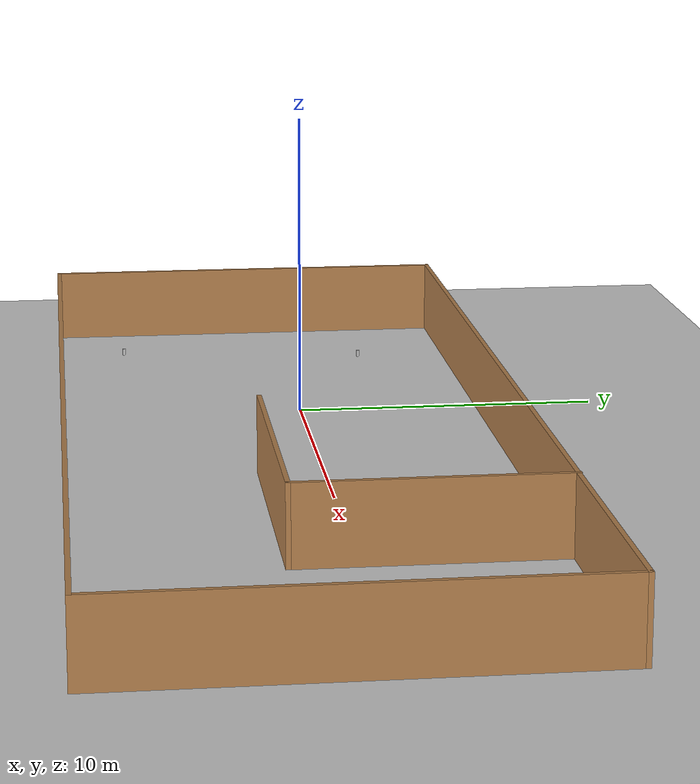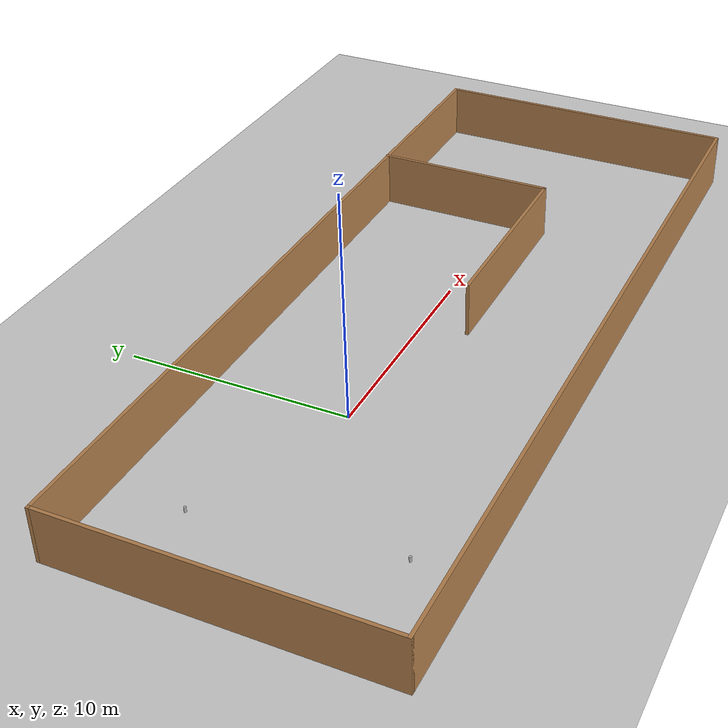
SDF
<sdf version="1.7">
 <world name="default">
  <light name="sun" type="directional">
   <pose>0 0 10 0 -0 0</pose>
   <diffuse>0.8 0.8 0.8 1</diffuse>
   <specular>0.2 0.2 0.2 1</specular>
   <attenuation>
    <range>1000</range>
    <constant>0.9</constant>
    <linear>0.01</linear>
    <quadratic>0.001</quadratic>
   </attenuation>
   <direction>-0.5 0.1 -0.9</direction>
   <spot><inner_angle>0</inner_angle><outer_angle>0</outer_angle><falloff>0</falloff></spot>
  </light>
  <model name="ground_plane">
   <static>1</static>
   <link name="link">
    <collision name="collision">
     <geometry><plane><normal>0 0 1</normal><size>100 100</size></plane></geometry>
     <surface><friction><ode><mu>100</mu><mu2>50</mu2></ode></friction></surface>
    </collision>
    <visual name="visual">
     <cast_shadows>0</cast_shadows>
     <geometry><plane><normal>0 0 1</normal><size>100 100</size></plane></geometry>
     <material>
      <script><uri>file://media/materials/scripts/gazebo.material</uri><name>Gazebo/Grey</name></script>
     </material>
    </visual>
   </link>
  </model>
  <gravity>0 0 -9.7803267714</gravity>
  <magnetic_field>6e-06 2.3e-05 -4.2e-05</magnetic_field>
  <atmosphere type="adiabatic"/>
  <physics type="ode">
   <max_step_size>0.001</max_step_size>
   <real_time_factor>1</real_time_factor>
   <real_time_update_rate>1000</real_time_update_rate>
  </physics>
  <scene><ambient>0.4 0.4 0.4 1</ambient><background>0.7 0.7 0.7 1</background><shadows>1</shadows></scene>
  <spherical_coordinates>
   <surface_model>EARTH_WGS84</surface_model>
   <latitude_deg>0</latitude_deg>
   <longitude_deg>0</longitude_deg>
   <elevation>0</elevation>
   <heading_deg>0</heading_deg>
  </spherical_coordinates>
  <model name="Untitled">
   <pose>6.60035 -0.965617 0 0 -0 0</pose>
   <link name="Wall_0">
    <collision name="Wall_0_Collision">
     <geometry><box><size>36.25 0.15 2.5</size></box></geometry>
     <pose>0 0 1.25 0 -0 0</pose>
    </collision>
    <visual name="Wall_0_Visual">
     <pose>0 0 1.25 0 -0 0</pose>
     <geometry><box><size>36.25 0.15 2.5</size></box></geometry>
     <material>
      <script><uri>file://media/materials/scripts/gazebo.material</uri><name>Gazebo/Wood</name></script>
      <ambient>1 1 1 1</ambient>
     </material>
     <meta><layer>0</layer></meta>
    </visual>
    <pose>-0 -7.06233 0 0 -0 0</pose>
   </link>
   <link name="Wall_1">
    <collision name="Wall_1_Collision">
     <geometry><box><size>14.25 0.15 2.5</size></box></geometry>
     <pose>0 0 1.25 0 -0 0</pose>
    </collision>
    <visual name="Wall_1_Visual">
     <pose>0 0 1.25 0 -0 0</pose>
     <geometry><box><size>14.25 0.15 2.5</size></box></geometry>
     <material>
      <script><uri>file://media/materials/scripts/gazebo.material</uri><name>Gazebo/Wood</name></script>
      <ambient>1 1 1 1</ambient>
     </material>
     <meta><layer>0</layer></meta>
    </visual>
    <pose>18.05 -0.01233 0 0 -0 1.5708</pose>
   </link>
   <link name="Wall_2">
    <collision name="Wall_2_Collision">
     <geometry><box><size>36.25 0.15 2.5</size></box></geometry>
     <pose>0 0 1.25 0 -0 0</pose>
    </collision>
    <visual name="Wall_2_Visual">
     <pose>0 0 1.25 0 -0 0</pose>
     <geometry><box><size>36.25 0.15 2.5</size></box></geometry>
     <material>
      <script><uri>file://media/materials/scripts/gazebo.material</uri><name>Gazebo/Wood</name></script>
      <ambient>1 1 1 1</ambient>
     </material>
     <meta><layer>0</layer></meta>
    </visual>
    <pose>-0 7.03767 0 0 -0 3.14159</pose>
   </link>
   <link name="Wall_3">
    <collision name="Wall_3_Collision">
     <geometry><box><size>14.25 0.15 2.5</size></box></geometry>
     <pose>0 0 1.25 0 -0 0</pose>
    </collision>
    <visual name="Wall_3_Visual">
     <pose>0 0 1.25 0 -0 0</pose>
     <geometry><box><size>14.25 0.15 2.5</size></box></geometry>
     <material>
      <script><uri>file://media/materials/scripts/gazebo.material</uri><name>Gazebo/Wood</name></script>
      <ambient>1 1 1 1</ambient>
     </material>
     <meta><layer>0</layer></meta>
    </visual>
    <pose>-18.05 -0.01233 0 0 -0 -1.5708</pose>
   </link>
   <link name="Wall_6">
    <collision name="Wall_6_Collision">
     <geometry><box><size>8.25 0.15 2.5</size></box></geometry>
     <pose>0 0 1.25 0 -0 0</pose>
    </collision>
    <visual name="Wall_6_Visual">
     <pose>0 0 1.25 0 -0 0</pose>
     <geometry><box><size>8.25 0.15 2.5</size></box></geometry>
     <material>
      <script><uri>file://media/materials/scripts/gazebo.material</uri><name>Gazebo/Wood</name></script>
      <ambient>1 1 1 1</ambient>
     </material>
     <meta><layer>0</layer></meta>
    </visual>
    <pose>9.7178 3.01233 0 0 -0 -1.5708</pose>
   </link>
   <link name="Wall_7">
    <collision name="Wall_7_Collision">
     <geometry><box><size>9.25 0.15 2.5</size></box></geometry>
     <pose>0 0 1.25 0 -0 0</pose>
    </collision>
    <visual name="Wall_7_Visual">
     <pose>0 0 1.25 0 -0 0</pose>
     <geometry><box><size>9.25 0.15 2.5</size></box></geometry>
     <material>
      <script><uri>file://media/materials/scripts/gazebo.material</uri><name>Gazebo/Wood</name></script>
      <ambient>1 1 1 1</ambient>
     </material>
     <meta><layer>0</layer></meta>
    </visual>
    <pose>5.1678 -1.03767 0 0 -0 3.14159</pose>
   </link>
   <static>1</static>
  </model>
  <model name="uwb_anchor0">
   <link name="link">
    <pose>-0 0 0.115 0 -0 0</pose>
    <inertial>
     <mass>0.39</mass>
     <inertia><ixx>0.00058</ixx><ixy>0</ixy><ixz>0</ixz><iyy>0.00058</iyy><iyz>0</iyz><izz>0.00019</izz></inertia>
    </inertial>
    <visual name="visual">
     <geometry><cylinder><radius>0.055</radius><length>0.23</length></cylinder></geometry>
     <material>
      <script>
       <uri>model://beer/materials/scripts</uri>
       <uri>model://beer/materials/textures</uri>
       <name>Beer/Diffuse</name>
      </script>
      <shader type="pixel"/>
     </material>
    </visual>
    <collision name="collision">
     <geometry><cylinder><radius>0.055</radius><length>0.23</length></cylinder></geometry>
     <surface>
      <friction>
       <ode><mu>1</mu><mu2>1</mu2><fdir1>0 0 0</fdir1><slip1>0</slip1><slip2>0</slip2></ode>
       <torsional>
        <coefficient>1</coefficient>
        <patch_radius>0</patch_radius>
        <surface_radius>0</surface_radius>
        <use_patch_radius>1</use_patch_radius>
        <ode><slip>0</slip></ode>
       </torsional>
      </friction>
      <bounce><restitution_coefficient>0</restitution_coefficient><threshold>1e+06</threshold></bounce>
      <contact>
       <collide_without_contact>0</collide_without_contact>
       <collide_without_contact_bitmask>1</collide_without_contact_bitmask>
       <collide_bitmask>1</collide_bitmask>
       <ode>
        <soft_cfm>0</soft_cfm>
        <soft_erp>0.2</soft_erp>
        <kp>1e+13</kp>
        <kd>1</kd>
        <max_vel>0.01</max_vel>
        <min_depth>0</min_depth>
       </ode>
       <bullet>
        <split_impulse>1</split_impulse>
        <split_impulse_penetration_threshold>-0.01</split_impulse_penetration_threshold>
        <soft_cfm>0</soft_cfm>
        <soft_erp>0.2</soft_erp>
        <kp>1e+13</kp>
        <kd>1</kd>
       </bullet>
      </contact>
     </surface>
    </collision>
   </link>
   <static>0</static>
   <pose>-7.2498 2.86991 0 0 0 -1e-06</pose>
  </model>
  <model name="uwb_anchor1">
   <link name="link">
    <pose>0 0 0.115 0 -0 0</pose>
    <inertial>
     <mass>0.39</mass>
     <inertia><ixx>0.00058</ixx><ixy>0</ixy><ixz>0</ixz><iyy>0.00058</iyy><iyz>0</iyz><izz>0.00019</izz></inertia>
    </inertial>
    <visual name="visual">
     <geometry><cylinder><radius>0.055</radius><length>0.23</length></cylinder></geometry>
     <material>
      <script>
       <uri>model://beer/materials/scripts</uri>
       <uri>model://beer/materials/textures</uri>
       <name>Beer/Diffuse</name>
      </script>
      <shader type="pixel"/>
     </material>
    </visual>
    <collision name="collision">
     <geometry><cylinder><radius>0.055</radius><length>0.23</length></cylinder></geometry>
     <surface>
      <friction>
       <ode><mu>1</mu><mu2>1</mu2><fdir1>0 0 0</fdir1><slip1>0</slip1><slip2>0</slip2></ode>
       <torsional>
        <coefficient>1</coefficient>
        <patch_radius>0</patch_radius>
        <surface_radius>0</surface_radius>
        <use_patch_radius>1</use_patch_radius>
        <ode><slip>0</slip></ode>
       </torsional>
      </friction>
      <bounce><restitution_coefficient>0</restitution_coefficient><threshold>1e+06</threshold></bounce>
      <contact>
       <collide_without_contact>0</collide_without_contact>
       <collide_without_contact_bitmask>1</collide_without_contact_bitmask>
       <collide_bitmask>1</collide_bitmask>
       <ode>
        <soft_cfm>0</soft_cfm>
        <soft_erp>0.2</soft_erp>
        <kp>1e+13</kp>
        <kd>1</kd>
        <max_vel>0.01</max_vel>
        <min_depth>0</min_depth>
       </ode>
       <bullet>
        <split_impulse>1</split_impulse>
        <split_impulse_penetration_threshold>-0.01</split_impulse_penetration_threshold>
        <soft_cfm>0</soft_cfm>
        <soft_erp>0.2</soft_erp>
        <kp>1e+13</kp>
        <kd>1</kd>
       </bullet>
      </contact>
     </surface>
    </collision>
   </link>
   <static>0</static>
   <pose>-6.65358 -5.77454 0.449705 0 0 -1e-06</pose>
  </model>
  <model name="uwb_anchor2">
   <link name="link">
    <pose>0 0 0.115 0 -0 0</pose>
    <inertial>
     <mass>0.39</mass>
     <inertia><ixx>0.00058</ixx><ixy>0</ixy><ixz>0</ixz><iyy>0.00058</iyy><iyz>0</iyz><izz>0.00019</izz></inertia>
    </inertial>
    <visual name="visual">
     <geometry><cylinder><radius>0.055</radius><length>0.23</length></cylinder></geometry>
     <material>
      <script>
       <uri>model://beer/materials/scripts</uri>
       <uri>model://beer/materials/textures</uri>
       <name>Beer/Diffuse</name>
      </script>
      <shader type="pixel"/>
     </material>
    </visual>
    <collision name="collision">
     <geometry><cylinder><radius>0.055</radius><length>0.23</length></cylinder></geometry>
     <surface>
      <friction>
       <ode><mu>1</mu><mu2>1</mu2><fdir1>0 0 0</fdir1><slip1>0</slip1><slip2>0</slip2></ode>
       <torsional>
        <coefficient>1</coefficient>
        <patch_radius>0</patch_radius>
        <surface_radius>0</surface_radius>
        <use_patch_radius>1</use_patch_radius>
        <ode><slip>0</slip></ode>
       </torsional>
      </friction>
      <bounce><restitution_coefficient>0</restitution_coefficient><threshold>1e+06</threshold></bounce>
      <contact>
       <collide_without_contact>0</collide_without_contact>
       <collide_without_contact_bitmask>1</collide_without_contact_bitmask>
       <collide_bitmask>1</collide_bitmask>
       <ode>
        <soft_cfm>0</soft_cfm>
        <soft_erp>0.2</soft_erp>
        <kp>1e+13</kp>
        <kd>1</kd>
        <max_vel>0.01</max_vel>
        <min_depth>0</min_depth>
       </ode>
       <bullet>
        <split_impulse>1</split_impulse>
        <split_impulse_penetration_threshold>-0.01</split_impulse_penetration_threshold>
        <soft_cfm>0</soft_cfm>
        <soft_erp>0.2</soft_erp>
        <kp>1e+13</kp>
        <kd>1</kd>
       </bullet>
      </contact>
     </surface>
    </collision>
   </link>
   <static>0</static>
   <pose>15.1582 -1.61868 0 0 -0 0</pose>
  </model>
 </world>
</sdf>
